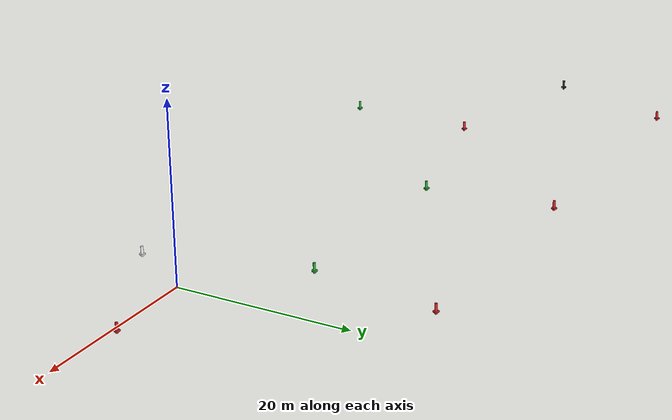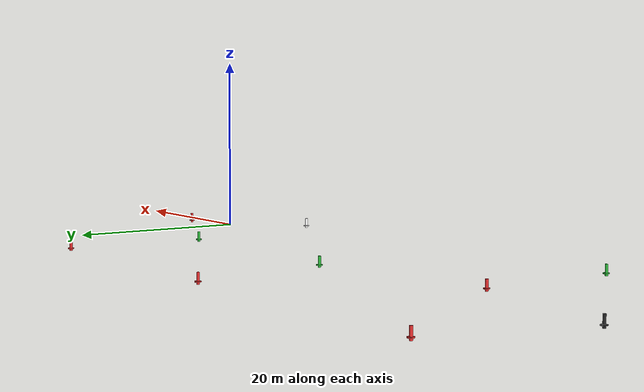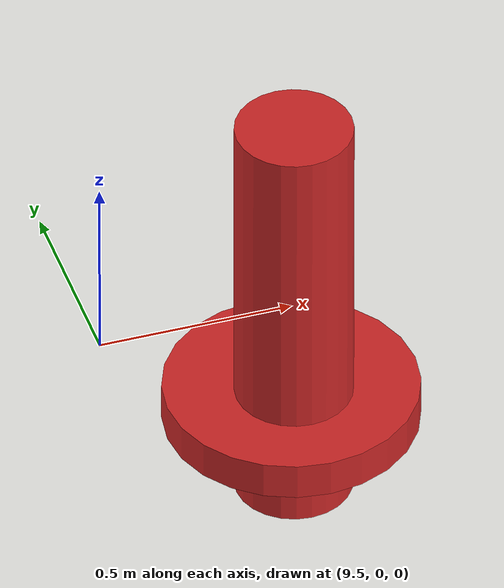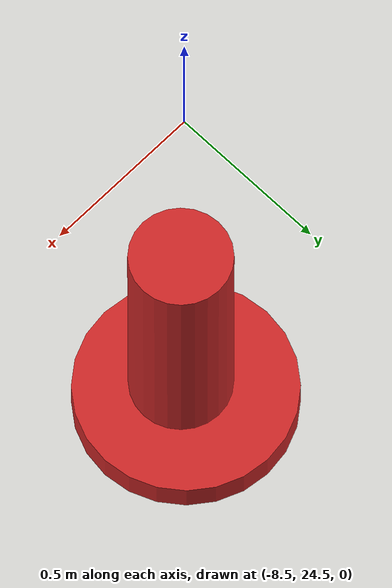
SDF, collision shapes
<?xml version="1.0"?>
<!-- Model for challenging navigation course 2.4 -->
<sdf version="1.6">
  <model name="navigation_phase2_4">

    <!-- Starboard_border -->
    <include>
      <name>red_bound_0</name>
      <pose>10 0 0 0 0 0</pose>
      <uri>model://mb_marker_buoy_red</uri>
    </include>

    <include>
      <name>red_bound_1</name>
      <pose>-8 25 0 0 0 0</pose>
      <uri>model://mb_marker_buoy_red</uri>
    </include>

    <include>
      <name>red_bound_2</name>
      <pose>-37 25 0 0 0 0</pose>
      <uri>model://mb_marker_buoy_red</uri>
    </include>

    <include>
      <name>red_bound_3</name>
      <pose>-55 5 0 0 0 0</pose>
      <uri>model://mb_marker_buoy_red</uri>
    </include>
    <include>
      <name>red_bound_4</name>
      <pose>-70 25 0 0 0 0</pose>
      <uri>model://mb_marker_buoy_red</uri>
    </include>
    <!-- Port_border -->
    <include>
      <name>white_bound_0</name>
      <pose>-5 -8 0.2 0 0 0</pose>
      <uri>model://mb_marker_buoy_white</uri>
    </include>

    <include>
      <name>green_bound_1</name>
      <pose>-10 10 0.2 0 0 0</pose>
      <uri>model://mb_marker_buoy_green</uri>
    </include>

    <include>
      <name>green_bound_2</name>
      <pose>-35 10 0.2 0 0 0</pose>
      <uri>model://mb_marker_buoy_green</uri>
    </include>

    <include>
      <name>green_bound_3</name>
      <pose>-55 -10 0.2 0 0 0</pose>
      <uri>model://mb_marker_buoy_green</uri>
    </include>

    <include>
      <name>black_bound_4</name>
      <pose>-75 10 0.2 0 0 0</pose>
      <uri>model://mb_marker_buoy_black</uri>
    </include>
  </model>
</sdf>

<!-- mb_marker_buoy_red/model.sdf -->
<sdf version="1.6">
  <model name="mb_marker_buoy_red">
    <link name="link">
      <inertial>
        <pose>0 0 -2 0 0 0</pose>
        <!-- Mass determined based on buoyancy geometry so object
             floats at mid-point of sphere -->
        <mass>20</mass>
        <!-- Mark only - based on cylinder -->
        <inertia>
          <ixx>1.0</ixx>
          <ixy>0</ixy>
          <ixz>0</ixz>
          <iyy>1.0</iyy>
          <iyz>0</iyz>
          <izz>0.1</izz>
        </inertia>
      </inertial>
      <collision name="collision_inner">
        <pose>0 -0.02 0.02 0 0 0</pose>
        <geometry>
          <cylinder>
            <radius>0.15</radius>
            <length>1.15</length>
          </cylinder>
        </geometry>
      </collision>
      <collision name="collision_outer">
        <pose>0 0 -0.3 0 0 0</pose>
        <geometry>
          <cylinder>
            <radius>0.325</radius>
            <length>0.1</length>
          </cylinder>
        </geometry>
      </collision>
      <visual name="visual">
        <pose>0 0 0 1.57079 0 0</pose>
        <geometry>
	        <mesh><uri>model://mb_marker_buoy_red/meshes/mb_marker_buoy.dae</uri></mesh>
        </geometry>
        <material>
          <script>
            <uri>model://mb_marker_buoy_red/materials/scripts/mb_marker_buoy.material</uri>
            <name>mb_marker_buoy/Red</name>
          </script>
        </material>
      </visual>
    </link>
    <plugin name="BuoyancyPlugin" filename="libbuoyancy_gazebo_plugin.so">
      <wave_model>ocean_waves</wave_model>
      <fluid_density>1000</fluid_density>
      <fluid_level>0.0</fluid_level>
      <linear_drag>25.0</linear_drag>
      <angular_drag>2.0</angular_drag>
      <buoyancy name="buoyancy_sphere">
        <link_name>link</link_name>
        <pose>0 0 -0.12 0 0 0</pose>
        <geometry>
          <sphere>
            <radius>0.325</radius>
          </sphere>
        </geometry>
      </buoyancy>
    </plugin>
  </model>
</sdf>

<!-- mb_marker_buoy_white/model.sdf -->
<sdf version="1.6">
  <model name="mb_marker_buoy_white">
    <link name="link">
      <inertial>
        <pose>0 0 -2 0 0 0</pose>
        <!-- Mass determined based on buoyancy geometry so object
             floats at mid-point of sphere -->
        <mass>20</mass>
        <!-- Mark only - based on cylinder -->
        <inertia>
          <ixx>1.0</ixx>
          <ixy>0</ixy>
          <ixz>0</ixz>
          <iyy>1.0</iyy>
          <iyz>0</iyz>
          <izz>0.1</izz>
        </inertia>
      </inertial>
      <collision name="collision_inner">
        <pose>0 -0.02 0.02 0 0 0</pose>
        <geometry>
          <cylinder>
            <radius>0.15</radius>
            <length>1.15</length>
          </cylinder>
        </geometry>
      </collision>
      <collision name="collision_outer">
        <pose>0 0 -0.3 0 0 0</pose>
        <geometry>
          <cylinder>
            <radius>0.325</radius>
            <length>0.1</length>
          </cylinder>
        </geometry>
      </collision>
      <visual name="visual">
        <pose>0 0 0 1.57079 0 0</pose>
        <geometry>
	        <mesh><uri>model://mb_marker_buoy_red/meshes/mb_marker_buoy.dae</uri></mesh>
        </geometry>
        <material>
          <script>
            <uri>file://media/materials/scripts/gazebo.material</uri>
            <name>Gazebo/White</name>
          </script>
        </material>
      </visual>
    </link>
    <plugin name="BuoyancyPlugin" filename="libbuoyancy_gazebo_plugin.so">
      <wave_model>ocean_waves</wave_model>
      <fluid_density>1000</fluid_density>
      <fluid_level>0.0</fluid_level>
      <linear_drag>25.0</linear_drag>
      <angular_drag>2.0</angular_drag>
      <buoyancy name="buoyancy_sphere">
        <link_name>link</link_name>
        <pose>0 0 -0.12 0 0 0</pose>
        <geometry>
          <sphere>
            <radius>0.325</radius>
          </sphere>
        </geometry>
      </buoyancy>
    </plugin>
  </model>
</sdf>

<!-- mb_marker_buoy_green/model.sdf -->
<sdf version="1.6">
  <model name="mb_marker_buoy_green">
    <link name="link">
      <inertial>
        <pose>0 0 -2 0 0 0</pose>
        <!-- Mass determined based on buoyancy geometry so object
             floats at mid-point of sphere -->
        <mass>20</mass>
        <!-- Mark only - based on cylinder -->
        <inertia>
          <ixx>1.0</ixx>
          <ixy>0</ixy>
          <ixz>0</ixz>
          <iyy>1.0</iyy>
          <iyz>0</iyz>
          <izz>0.1</izz>
        </inertia>
      </inertial>
      <collision name="collision_inner">
        <pose>0 -0.02 0.02 0 0 0</pose>
        <geometry>
          <cylinder>
            <radius>0.15</radius>
            <length>1.15</length>
          </cylinder>
        </geometry>
      </collision>
      <collision name="collision_outer">
        <pose>0 0 -0.3 0 0 0</pose>
        <geometry>
          <cylinder>
            <radius>0.325</radius>
            <length>0.1</length>
          </cylinder>
        </geometry>
      </collision>
      <visual name="visual">
        <pose>0 0 0 1.57079 0 0</pose>
        <geometry>
	        <mesh><uri>model://mb_marker_buoy_red/meshes/mb_marker_buoy.dae</uri></mesh>
        </geometry>
        <material>
          <script>
            <uri>model://mb_marker_buoy_green/materials/scripts/mb_marker_buoy.material</uri>
            <name>mb_marker_buoy/Green</name>
          </script>
        </material>
      </visual>
    </link>
    <plugin name="BuoyancyPlugin" filename="libbuoyancy_gazebo_plugin.so">
      <wave_model>ocean_waves</wave_model>
      <fluid_density>1000</fluid_density>
      <fluid_level>0.0</fluid_level>
      <linear_drag>25.0</linear_drag>
      <angular_drag>2.0</angular_drag>
      <buoyancy name="buoyancy_sphere">
        <link_name>link</link_name>
        <pose>0 0 -0.12 0 0 0</pose>
        <geometry>
          <sphere>
            <radius>0.325</radius>
          </sphere>
        </geometry>
      </buoyancy>
    </plugin>
  </model>
</sdf>

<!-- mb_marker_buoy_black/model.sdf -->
<sdf version="1.6">
  <model name="mb_marker_buoy_black">
    <link name="link">
      <inertial>
        <pose>0 0 -2 0 0 0</pose>
        <!-- Mass determined based on buoyancy geometry so object
             floats at mid-point of sphere -->
        <mass>20</mass>
        <!-- Mark only - based on cylinder -->
        <inertia>
          <ixx>1.0</ixx>
          <ixy>0</ixy>
          <ixz>0</ixz>
          <iyy>1.0</iyy>
          <iyz>0</iyz>
          <izz>0.1</izz>
        </inertia>
      </inertial>
      <collision name="collision_inner">
        <pose>0 -0.02 0.02 0 0 0</pose>
        <geometry>
          <cylinder>
            <radius>0.15</radius>
            <length>1.15</length>
          </cylinder>
        </geometry>
      </collision>
      <collision name="collision_outer">
        <pose>0 0 -0.3 0 0 0</pose>
        <geometry>
          <cylinder>
            <radius>0.325</radius>
            <length>0.1</length>
          </cylinder>
        </geometry>
      </collision>
      <visual name="visual">
        <pose>0 0 0 1.57079 0 0</pose>
        <geometry>
	        <mesh><uri>model://mb_marker_buoy_red/meshes/mb_marker_buoy.dae</uri></mesh>
        </geometry>
        <material>
          <script>
            <uri>file://media/materials/scripts/gazebo.material</uri>
            <name>Gazebo/Black</name>
          </script>
        </material>
      </visual>
    </link>
    <plugin name="BuoyancyPlugin" filename="libbuoyancy_gazebo_plugin.so">
      <wave_model>ocean_waves</wave_model>
      <fluid_density>1000</fluid_density>
      <fluid_level>0.0</fluid_level>
      <linear_drag>25.0</linear_drag>
      <angular_drag>2.0</angular_drag>
      <buoyancy name="buoyancy_sphere">
        <link_name>link</link_name>
        <pose>0 0 -0.12 0 0 0</pose>
        <geometry>
          <sphere>
            <radius>0.325</radius>
          </sphere>
        </geometry>
      </buoyancy>
    </plugin>
  </model>
</sdf>
